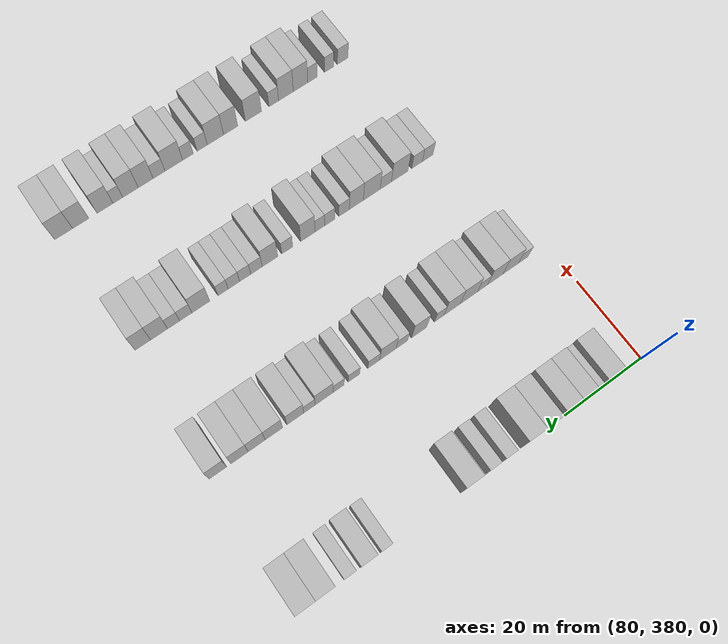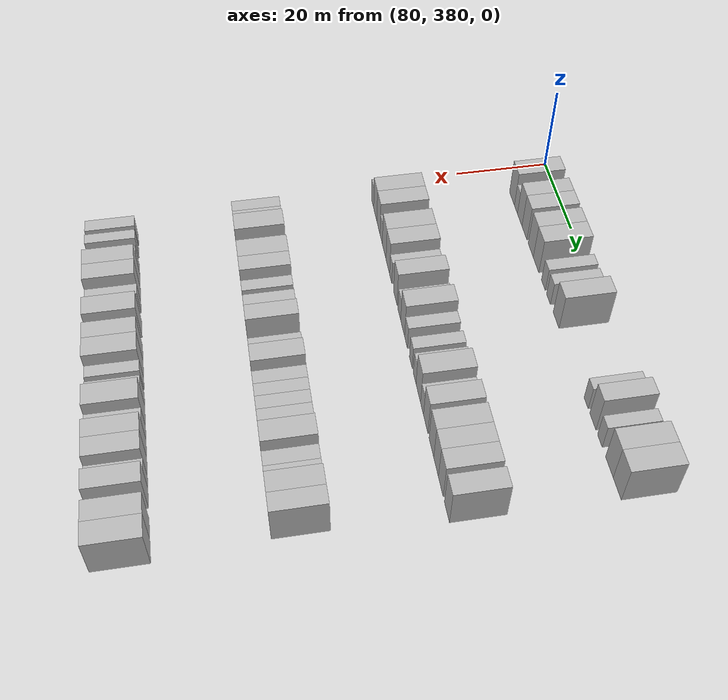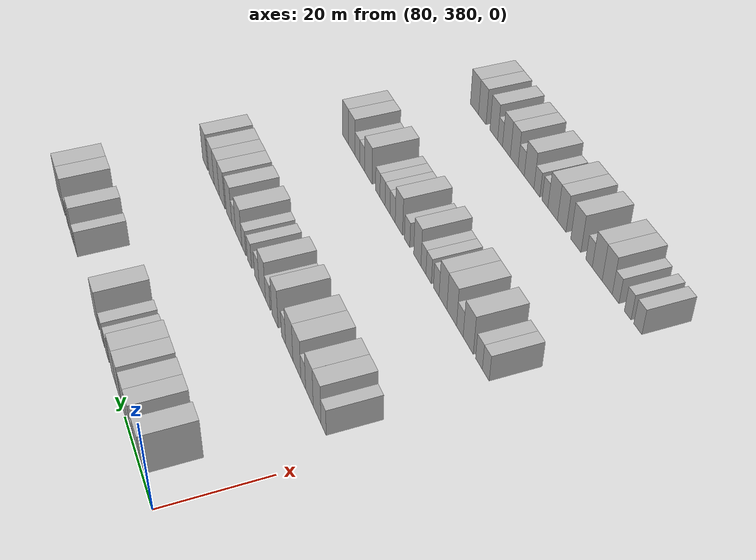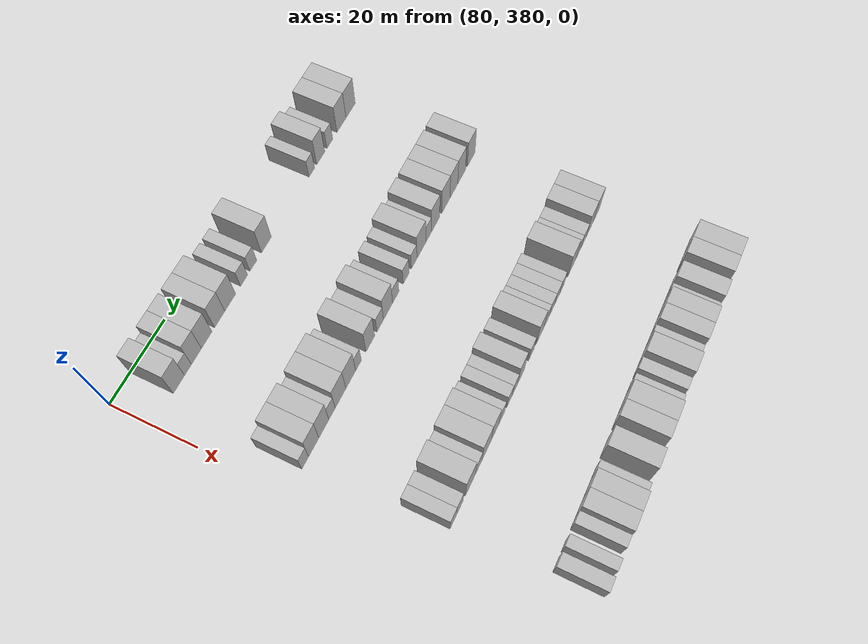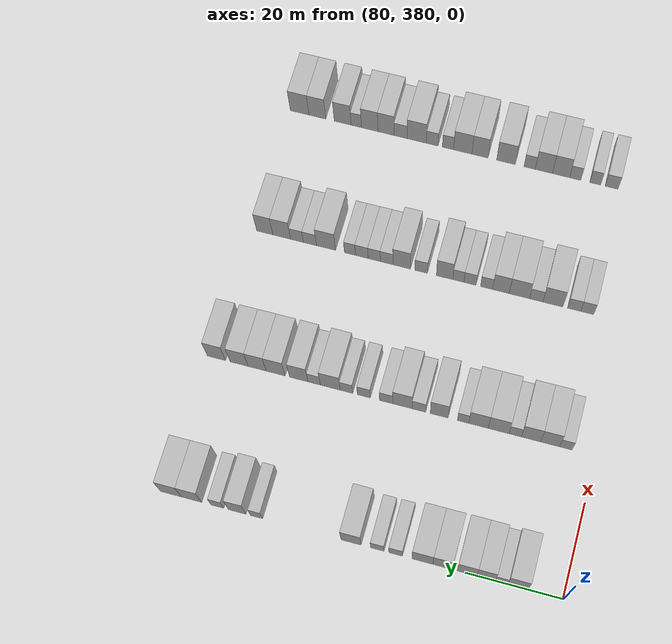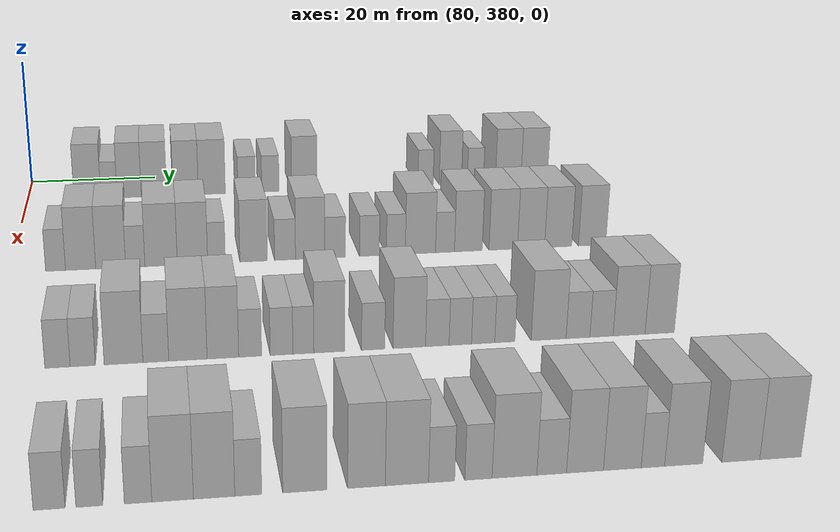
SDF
<sdf version="1.6">
 <world name="default">
  <model name="building_700">
   <static>1</static>
   <pose>85.0000 389.3509 0 0.000000 0.000000 0.000000</pose>
   <link name="link">
    <pose>0 0 4.50 0 0 0</pose>
    <collision name="collision"><geometry><box><size>10.0000 4.1630 9.0000</size></box></geometry></collision>
    <visual name="visual">
     <cast_shadows>0</cast_shadows>
     <geometry><box><size>10.0000 4.1630 9.0000</size></box></geometry>
     <material>
      <script>
       <uri>model://HANNAS_wall/materials/scripts</uri>
       <uri>model://HANNAS_wall/materials/textures</uri>
       <name>vrc/HANNAS_wall</name>
      </script>
     </material>
    </visual>
   </link>
  </model>
  <model name="building_701">
   <static>1</static>
   <pose>85.0000 392.7060 0 0.000000 0.000000 0.000000</pose>
   <link name="link">
    <pose>0 0 3.00 0 0 0</pose>
    <collision name="collision"><geometry><box><size>10.0000 2.5473 6.0000</size></box></geometry></collision>
    <visual name="visual">
     <cast_shadows>0</cast_shadows>
     <geometry><box><size>10.0000 2.5473 6.0000</size></box></geometry>
     <material>
      <script>
       <uri>model://HANNAS_wall/materials/scripts</uri>
       <uri>model://HANNAS_wall/materials/textures</uri>
       <name>vrc/HANNAS_wall</name>
      </script>
     </material>
    </visual>
   </link>
  </model>
  <model name="building_702">
   <static>1</static>
   <pose>85.0000 395.8703 0 0.000000 0.000000 0.000000</pose>
   <link name="link">
    <pose>0 0 4.50 0 0 0</pose>
    <collision name="collision"><geometry><box><size>10.0000 3.7812 9.0000</size></box></geometry></collision>
    <visual name="visual">
     <cast_shadows>0</cast_shadows>
     <geometry><box><size>10.0000 3.7812 9.0000</size></box></geometry>
     <material>
      <script>
       <uri>model://HANNAS_wall/materials/scripts</uri>
       <uri>model://HANNAS_wall/materials/textures</uri>
       <name>vrc/HANNAS_wall</name>
      </script>
     </material>
    </visual>
   </link>
  </model>
  <model name="building_703">
   <static>1</static>
   <pose>85.0000 399.7711 0 0.000000 0.000000 0.000000</pose>
   <link name="link">
    <pose>0 0 4.50 0 0 0</pose>
    <collision name="collision"><geometry><box><size>10.0000 4.0203 9.0000</size></box></geometry></collision>
    <visual name="visual">
     <cast_shadows>0</cast_shadows>
     <geometry><box><size>10.0000 4.0203 9.0000</size></box></geometry>
     <material>
      <script>
       <uri>model://HANNAS_wall/materials/scripts</uri>
       <uri>model://HANNAS_wall/materials/textures</uri>
       <name>vrc/HANNAS_wall</name>
      </script>
     </material>
    </visual>
   </link>
  </model>
  <model name="building_704">
   <static>1</static>
   <pose>85.0000 404.7817 0 0.000000 0.000000 0.000000</pose>
   <link name="link">
    <pose>0 0 4.50 0 0 0</pose>
    <collision name="collision"><geometry><box><size>10.0000 4.0009 9.0000</size></box></geometry></collision>
    <visual name="visual">
     <cast_shadows>0</cast_shadows>
     <geometry><box><size>10.0000 4.0009 9.0000</size></box></geometry>
     <material>
      <script>
       <uri>model://HANNAS_wall/materials/scripts</uri>
       <uri>model://HANNAS_wall/materials/textures</uri>
       <name>vrc/HANNAS_wall</name>
      </script>
     </material>
    </visual>
   </link>
  </model>
  <model name="building_705">
   <static>1</static>
   <pose>85.0000 408.9321 0 0.000000 0.000000 0.000000</pose>
   <link name="link">
    <pose>0 0 4.50 0 0 0</pose>
    <collision name="collision"><geometry><box><size>10.0000 4.2998 9.0000</size></box></geometry></collision>
    <visual name="visual">
     <cast_shadows>0</cast_shadows>
     <geometry><box><size>10.0000 4.2998 9.0000</size></box></geometry>
     <material>
      <script>
       <uri>model://HANNAS_wall/materials/scripts</uri>
       <uri>model://HANNAS_wall/materials/textures</uri>
       <name>vrc/HANNAS_wall</name>
      </script>
     </material>
    </visual>
   </link>
  </model>
  <model name="building_706">
   <static>1</static>
   <pose>85.0000 414.4917 0 0.000000 0.000000 0.000000</pose>
   <link name="link">
    <pose>0 0 3.00 0 0 0</pose>
    <collision name="collision"><geometry><box><size>10.0000 2.8193 6.0000</size></box></geometry></collision>
    <visual name="visual">
     <cast_shadows>0</cast_shadows>
     <geometry><box><size>10.0000 2.8193 6.0000</size></box></geometry>
     <material>
      <script>
       <uri>model://HANNAS_wall/materials/scripts</uri>
       <uri>model://HANNAS_wall/materials/textures</uri>
       <name>vrc/HANNAS_wall</name>
      </script>
     </material>
    </visual>
   </link>
  </model>
  <model name="building_707">
   <static>1</static>
   <pose>85.0000 418.2893 0 0.000000 0.000000 0.000000</pose>
   <link name="link">
    <pose>0 0 3.00 0 0 0</pose>
    <collision name="collision"><geometry><box><size>10.0000 2.7759 6.0000</size></box></geometry></collision>
    <visual name="visual">
     <cast_shadows>0</cast_shadows>
     <geometry><box><size>10.0000 2.7759 6.0000</size></box></geometry>
     <material>
      <script>
       <uri>model://HANNAS_wall/materials/scripts</uri>
       <uri>model://HANNAS_wall/materials/textures</uri>
       <name>vrc/HANNAS_wall</name>
      </script>
     </material>
    </visual>
   </link>
  </model>
  <model name="building_708">
   <static>1</static>
   <pose>85.0000 423.7507 0 0.000000 0.000000 0.000000</pose>
   <link name="link">
    <pose>0 0 4.50 0 0 0</pose>
    <collision name="collision"><geometry><box><size>10.0000 4.1468 9.0000</size></box></geometry></collision>
    <visual name="visual">
     <cast_shadows>0</cast_shadows>
     <geometry><box><size>10.0000 4.1468 9.0000</size></box></geometry>
     <material>
      <script>
       <uri>model://HANNAS_wall/materials/scripts</uri>
       <uri>model://HANNAS_wall/materials/textures</uri>
       <name>vrc/HANNAS_wall</name>
      </script>
     </material>
    </visual>
   </link>
  </model>
  <model name="building_709">
   <static>1</static>
   <pose>85.0000 443.6241 0 0.000000 0.000000 0.000000</pose>
   <link name="link">
    <pose>0 0 3.00 0 0 0</pose>
    <collision name="collision"><geometry><box><size>10.0000 2.5333 6.0000</size></box></geometry></collision>
    <visual name="visual">
     <cast_shadows>0</cast_shadows>
     <geometry><box><size>10.0000 2.5333 6.0000</size></box></geometry>
     <material>
      <script>
       <uri>model://HANNAS_wall/materials/scripts</uri>
       <uri>model://HANNAS_wall/materials/textures</uri>
       <name>vrc/HANNAS_wall</name>
      </script>
     </material>
    </visual>
   </link>
  </model>
  <model name="building_710">
   <static>1</static>
   <pose>85.0000 447.7383 0 0.000000 0.000000 0.000000</pose>
   <link name="link">
    <pose>0 0 4.50 0 0 0</pose>
    <collision name="collision"><geometry><box><size>10.0000 3.6951 9.0000</size></box></geometry></collision>
    <visual name="visual">
     <cast_shadows>0</cast_shadows>
     <geometry><box><size>10.0000 3.6951 9.0000</size></box></geometry>
     <material>
      <script>
       <uri>model://HANNAS_wall/materials/scripts</uri>
       <uri>model://HANNAS_wall/materials/textures</uri>
       <name>vrc/HANNAS_wall</name>
      </script>
     </material>
    </visual>
   </link>
  </model>
  <model name="building_711">
   <static>1</static>
   <pose>85.0000 451.9370 0 0.000000 0.000000 0.000000</pose>
   <link name="link">
    <pose>0 0 3.00 0 0 0</pose>
    <collision name="collision"><geometry><box><size>10.0000 2.7025 6.0000</size></box></geometry></collision>
    <visual name="visual">
     <cast_shadows>0</cast_shadows>
     <geometry><box><size>10.0000 2.7025 6.0000</size></box></geometry>
     <material>
      <script>
       <uri>model://HANNAS_wall/materials/scripts</uri>
       <uri>model://HANNAS_wall/materials/textures</uri>
       <name>vrc/HANNAS_wall</name>
      </script>
     </material>
    </visual>
   </link>
  </model>
  <model name="building_712">
   <static>1</static>
   <pose>85.0000 457.4324 0 0.000000 0.000000 0.000000</pose>
   <link name="link">
    <pose>0 0 4.50 0 0 0</pose>
    <collision name="collision"><geometry><box><size>10.0000 4.2882 9.0000</size></box></geometry></collision>
    <visual name="visual">
     <cast_shadows>0</cast_shadows>
     <geometry><box><size>10.0000 4.2882 9.0000</size></box></geometry>
     <material>
      <script>
       <uri>model://HANNAS_wall/materials/scripts</uri>
       <uri>model://HANNAS_wall/materials/textures</uri>
       <name>vrc/HANNAS_wall</name>
      </script>
     </material>
    </visual>
   </link>
  </model>
  <model name="building_713">
   <static>1</static>
   <pose>85.0000 461.8091 0 0.000000 0.000000 0.000000</pose>
   <link name="link">
    <pose>0 0 4.50 0 0 0</pose>
    <collision name="collision"><geometry><box><size>10.0000 4.4652 9.0000</size></box></geometry></collision>
    <visual name="visual">
     <cast_shadows>0</cast_shadows>
     <geometry><box><size>10.0000 4.4652 9.0000</size></box></geometry>
     <material>
      <script>
       <uri>model://HANNAS_wall/materials/scripts</uri>
       <uri>model://HANNAS_wall/materials/textures</uri>
       <name>vrc/HANNAS_wall</name>
      </script>
     </material>
    </visual>
   </link>
  </model>
  <model name="building_931">
   <static>1</static>
   <pose>115.0000 386.2589 0 0.000000 0.000000 0.000000</pose>
   <link name="link">
    <pose>0 0 3.00 0 0 0</pose>
    <collision name="collision"><geometry><box><size>10.0000 2.6485 6.0000</size></box></geometry></collision>
    <visual name="visual">
     <cast_shadows>0</cast_shadows>
     <geometry><box><size>10.0000 2.6485 6.0000</size></box></geometry>
     <material>
      <script>
       <uri>model://HANNAS_wall/materials/scripts</uri>
       <uri>model://HANNAS_wall/materials/textures</uri>
       <name>vrc/HANNAS_wall</name>
      </script>
     </material>
    </visual>
   </link>
  </model>
  <model name="building_932">
   <static>1</static>
   <pose>115.0000 389.6103 0 0.000000 0.000000 0.000000</pose>
   <link name="link">
    <pose>0 0 4.50 0 0 0</pose>
    <collision name="collision"><geometry><box><size>10.0000 4.0544 9.0000</size></box></geometry></collision>
    <visual name="visual">
     <cast_shadows>0</cast_shadows>
     <geometry><box><size>10.0000 4.0544 9.0000</size></box></geometry>
     <material>
      <script>
       <uri>model://HANNAS_wall/materials/scripts</uri>
       <uri>model://HANNAS_wall/materials/textures</uri>
       <name>vrc/HANNAS_wall</name>
      </script>
     </material>
    </visual>
   </link>
  </model>
  <model name="building_933">
   <static>1</static>
   <pose>115.0000 393.6614 0 0.000000 0.000000 0.000000</pose>
   <link name="link">
    <pose>0 0 4.50 0 0 0</pose>
    <collision name="collision"><geometry><box><size>10.0000 4.0476 9.0000</size></box></geometry></collision>
    <visual name="visual">
     <cast_shadows>0</cast_shadows>
     <geometry><box><size>10.0000 4.0476 9.0000</size></box></geometry>
     <material>
      <script>
       <uri>model://HANNAS_wall/materials/scripts</uri>
       <uri>model://HANNAS_wall/materials/textures</uri>
       <name>vrc/HANNAS_wall</name>
      </script>
     </material>
    </visual>
   </link>
  </model>
  <model name="building_934">
   <static>1</static>
   <pose>115.0000 396.9915 0 0.000000 0.000000 0.000000</pose>
   <link name="link">
    <pose>0 0 3.00 0 0 0</pose>
    <collision name="collision"><geometry><box><size>10.0000 2.6128 6.0000</size></box></geometry></collision>
    <visual name="visual">
     <cast_shadows>0</cast_shadows>
     <geometry><box><size>10.0000 2.6128 6.0000</size></box></geometry>
     <material>
      <script>
       <uri>model://HANNAS_wall/materials/scripts</uri>
       <uri>model://HANNAS_wall/materials/textures</uri>
       <name>vrc/HANNAS_wall</name>
      </script>
     </material>
    </visual>
   </link>
  </model>
  <model name="building_935">
   <static>1</static>
   <pose>115.0000 400.5063 0 0.000000 0.000000 0.000000</pose>
   <link name="link">
    <pose>0 0 4.50 0 0 0</pose>
    <collision name="collision"><geometry><box><size>10.0000 4.4168 9.0000</size></box></geometry></collision>
    <visual name="visual">
     <cast_shadows>0</cast_shadows>
     <geometry><box><size>10.0000 4.4168 9.0000</size></box></geometry>
     <material>
      <script>
       <uri>model://HANNAS_wall/materials/scripts</uri>
       <uri>model://HANNAS_wall/materials/textures</uri>
       <name>vrc/HANNAS_wall</name>
      </script>
     </material>
    </visual>
   </link>
  </model>
  <model name="building_936">
   <static>1</static>
   <pose>115.0000 404.7942 0 0.000000 0.000000 0.000000</pose>
   <link name="link">
    <pose>0 0 4.50 0 0 0</pose>
    <collision name="collision"><geometry><box><size>10.0000 4.1589 9.0000</size></box></geometry></collision>
    <visual name="visual">
     <cast_shadows>0</cast_shadows>
     <geometry><box><size>10.0000 4.1589 9.0000</size></box></geometry>
     <material>
      <script>
       <uri>model://HANNAS_wall/materials/scripts</uri>
       <uri>model://HANNAS_wall/materials/textures</uri>
       <name>vrc/HANNAS_wall</name>
      </script>
     </material>
    </visual>
   </link>
  </model>
  <model name="building_937">
   <static>1</static>
   <pose>115.0000 408.0900 0 0.000000 0.000000 0.000000</pose>
   <link name="link">
    <pose>0 0 3.00 0 0 0</pose>
    <collision name="collision"><geometry><box><size>10.0000 2.4327 6.0000</size></box></geometry></collision>
    <visual name="visual">
     <cast_shadows>0</cast_shadows>
     <geometry><box><size>10.0000 2.4327 6.0000</size></box></geometry>
     <material>
      <script>
       <uri>model://HANNAS_wall/materials/scripts</uri>
       <uri>model://HANNAS_wall/materials/textures</uri>
       <name>vrc/HANNAS_wall</name>
      </script>
     </material>
    </visual>
   </link>
  </model>
  <model name="building_938">
   <static>1</static>
   <pose>115.0000 413.2102 0 0.000000 0.000000 0.000000</pose>
   <link name="link">
    <pose>0 0 4.50 0 0 0</pose>
    <collision name="collision"><geometry><box><size>10.0000 3.8076 9.0000</size></box></geometry></collision>
    <visual name="visual">
     <cast_shadows>0</cast_shadows>
     <geometry><box><size>10.0000 3.8076 9.0000</size></box></geometry>
     <material>
      <script>
       <uri>model://HANNAS_wall/materials/scripts</uri>
       <uri>model://HANNAS_wall/materials/textures</uri>
       <name>vrc/HANNAS_wall</name>
      </script>
     </material>
    </visual>
   </link>
  </model>
  <model name="building_939">
   <static>1</static>
   <pose>115.0000 417.5746 0 0.000000 0.000000 0.000000</pose>
   <link name="link">
    <pose>0 0 3.00 0 0 0</pose>
    <collision name="collision"><geometry><box><size>10.0000 2.9213 6.0000</size></box></geometry></collision>
    <visual name="visual">
     <cast_shadows>0</cast_shadows>
     <geometry><box><size>10.0000 2.9213 6.0000</size></box></geometry>
     <material>
      <script>
       <uri>model://HANNAS_wall/materials/scripts</uri>
       <uri>model://HANNAS_wall/materials/textures</uri>
       <name>vrc/HANNAS_wall</name>
      </script>
     </material>
    </visual>
   </link>
  </model>
  <model name="building_940">
   <static>1</static>
   <pose>115.0000 421.0949 0 0.000000 0.000000 0.000000</pose>
   <link name="link">
    <pose>0 0 4.50 0 0 0</pose>
    <collision name="collision"><geometry><box><size>10.0000 4.1192 9.0000</size></box></geometry></collision>
    <visual name="visual">
     <cast_shadows>0</cast_shadows>
     <geometry><box><size>10.0000 4.1192 9.0000</size></box></geometry>
     <material>
      <script>
       <uri>model://HANNAS_wall/materials/scripts</uri>
       <uri>model://HANNAS_wall/materials/textures</uri>
       <name>vrc/HANNAS_wall</name>
      </script>
     </material>
    </visual>
   </link>
  </model>
  <model name="building_941">
   <static>1</static>
   <pose>115.0000 424.5959 0 0.000000 0.000000 0.000000</pose>
   <link name="link">
    <pose>0 0 3.00 0 0 0</pose>
    <collision name="collision"><geometry><box><size>10.0000 2.8827 6.0000</size></box></geometry></collision>
    <visual name="visual">
     <cast_shadows>0</cast_shadows>
     <geometry><box><size>10.0000 2.8827 6.0000</size></box></geometry>
     <material>
      <script>
       <uri>model://HANNAS_wall/materials/scripts</uri>
       <uri>model://HANNAS_wall/materials/textures</uri>
       <name>vrc/HANNAS_wall</name>
      </script>
     </material>
    </visual>
   </link>
  </model>
  <model name="building_942">
   <static>1</static>
   <pose>115.0000 429.4370 0 0.000000 0.000000 0.000000</pose>
   <link name="link">
    <pose>0 0 3.00 0 0 0</pose>
    <collision name="collision"><geometry><box><size>10.0000 2.7996 6.0000</size></box></geometry></collision>
    <visual name="visual">
     <cast_shadows>0</cast_shadows>
     <geometry><box><size>10.0000 2.7996 6.0000</size></box></geometry>
     <material>
      <script>
       <uri>model://HANNAS_wall/materials/scripts</uri>
       <uri>model://HANNAS_wall/materials/textures</uri>
       <name>vrc/HANNAS_wall</name>
      </script>
     </material>
    </visual>
   </link>
  </model>
  <model name="building_943">
   <static>1</static>
   <pose>115.0000 433.1832 0 0.000000 0.000000 0.000000</pose>
   <link name="link">
    <pose>0 0 3.00 0 0 0</pose>
    <collision name="collision"><geometry><box><size>10.0000 2.6928 6.0000</size></box></geometry></collision>
    <visual name="visual">
     <cast_shadows>0</cast_shadows>
     <geometry><box><size>10.0000 2.6928 6.0000</size></box></geometry>
     <material>
      <script>
       <uri>model://HANNAS_wall/materials/scripts</uri>
       <uri>model://HANNAS_wall/materials/textures</uri>
       <name>vrc/HANNAS_wall</name>
      </script>
     </material>
    </visual>
   </link>
  </model>
  <model name="building_944">
   <static>1</static>
   <pose>115.0000 436.6951 0 0.000000 0.000000 0.000000</pose>
   <link name="link">
    <pose>0 0 4.50 0 0 0</pose>
    <collision name="collision"><geometry><box><size>10.0000 4.3311 9.0000</size></box></geometry></collision>
    <visual name="visual">
     <cast_shadows>0</cast_shadows>
     <geometry><box><size>10.0000 4.3311 9.0000</size></box></geometry>
     <material>
      <script>
       <uri>model://HANNAS_wall/materials/scripts</uri>
       <uri>model://HANNAS_wall/materials/textures</uri>
       <name>vrc/HANNAS_wall</name>
      </script>
     </material>
    </visual>
   </link>
  </model>
  <model name="building_945">
   <static>1</static>
   <pose>115.0000 440.2238 0 0.000000 0.000000 0.000000</pose>
   <link name="link">
    <pose>0 0 3.00 0 0 0</pose>
    <collision name="collision"><geometry><box><size>10.0000 2.7263 6.0000</size></box></geometry></collision>
    <visual name="visual">
     <cast_shadows>0</cast_shadows>
     <geometry><box><size>10.0000 2.7263 6.0000</size></box></geometry>
     <material>
      <script>
       <uri>model://HANNAS_wall/materials/scripts</uri>
       <uri>model://HANNAS_wall/materials/textures</uri>
       <name>vrc/HANNAS_wall</name>
      </script>
     </material>
    </visual>
   </link>
  </model>
  <model name="building_946">
   <static>1</static>
   <pose>115.0000 443.5820 0 0.000000 0.000000 0.000000</pose>
   <link name="link">
    <pose>0 0 4.50 0 0 0</pose>
    <collision name="collision"><geometry><box><size>10.0000 3.9902 9.0000</size></box></geometry></collision>
    <visual name="visual">
     <cast_shadows>0</cast_shadows>
     <geometry><box><size>10.0000 3.9902 9.0000</size></box></geometry>
     <material>
      <script>
       <uri>model://HANNAS_wall/materials/scripts</uri>
       <uri>model://HANNAS_wall/materials/textures</uri>
       <name>vrc/HANNAS_wall</name>
      </script>
     </material>
    </visual>
   </link>
  </model>
  <model name="building_947">
   <static>1</static>
   <pose>115.0000 448.6470 0 0.000000 0.000000 0.000000</pose>
   <link name="link">
    <pose>0 0 4.50 0 0 0</pose>
    <collision name="collision"><geometry><box><size>10.0000 4.1398 9.0000</size></box></geometry></collision>
    <visual name="visual">
     <cast_shadows>0</cast_shadows>
     <geometry><box><size>10.0000 4.1398 9.0000</size></box></geometry>
     <material>
      <script>
       <uri>model://HANNAS_wall/materials/scripts</uri>
       <uri>model://HANNAS_wall/materials/textures</uri>
       <name>vrc/HANNAS_wall</name>
      </script>
     </material>
    </visual>
   </link>
  </model>
  <model name="building_948">
   <static>1</static>
   <pose>115.0000 452.6961 0 0.000000 0.000000 0.000000</pose>
   <link name="link">
    <pose>0 0 4.50 0 0 0</pose>
    <collision name="collision"><geometry><box><size>10.0000 3.9584 9.0000</size></box></geometry></collision>
    <visual name="visual">
     <cast_shadows>0</cast_shadows>
     <geometry><box><size>10.0000 3.9584 9.0000</size></box></geometry>
     <material>
      <script>
       <uri>model://HANNAS_wall/materials/scripts</uri>
       <uri>model://HANNAS_wall/materials/textures</uri>
       <name>vrc/HANNAS_wall</name>
      </script>
     </material>
    </visual>
   </link>
  </model>
  <model name="building_949">
   <static>1</static>
   <pose>115.0000 456.6664 0 0.000000 0.000000 0.000000</pose>
   <link name="link">
    <pose>0 0 4.50 0 0 0</pose>
    <collision name="collision"><geometry><box><size>10.0000 3.9823 9.0000</size></box></geometry></collision>
    <visual name="visual">
     <cast_shadows>0</cast_shadows>
     <geometry><box><size>10.0000 3.9823 9.0000</size></box></geometry>
     <material>
      <script>
       <uri>model://HANNAS_wall/materials/scripts</uri>
       <uri>model://HANNAS_wall/materials/textures</uri>
       <name>vrc/HANNAS_wall</name>
      </script>
     </material>
    </visual>
   </link>
  </model>
  <model name="building_950">
   <static>1</static>
   <pose>115.0000 461.6704 0 0.000000 0.000000 0.000000</pose>
   <link name="link">
    <pose>0 0 4.50 0 0 0</pose>
    <collision name="collision"><geometry><box><size>10.0000 4.0256 9.0000</size></box></geometry></collision>
    <visual name="visual">
     <cast_shadows>0</cast_shadows>
     <geometry><box><size>10.0000 4.0256 9.0000</size></box></geometry>
     <material>
      <script>
       <uri>model://HANNAS_wall/materials/scripts</uri>
       <uri>model://HANNAS_wall/materials/textures</uri>
       <name>vrc/HANNAS_wall</name>
      </script>
     </material>
    </visual>
   </link>
  </model>
  <model name="building_1168">
   <static>1</static>
   <pose>145.0000 388.3261 0 0.000000 0.000000 0.000000</pose>
   <link name="link">
    <pose>0 0 3.00 0 0 0</pose>
    <collision name="collision"><geometry><box><size>10.0000 2.8599 6.0000</size></box></geometry></collision>
    <visual name="visual">
     <cast_shadows>0</cast_shadows>
     <geometry><box><size>10.0000 2.8599 6.0000</size></box></geometry>
     <material>
      <script>
       <uri>model://HANNAS_wall/materials/scripts</uri>
       <uri>model://HANNAS_wall/materials/textures</uri>
       <name>vrc/HANNAS_wall</name>
      </script>
     </material>
    </visual>
   </link>
  </model>
  <model name="building_1169">
   <static>1</static>
   <pose>145.0000 391.1811 0 0.000000 0.000000 0.000000</pose>
   <link name="link">
    <pose>0 0 3.00 0 0 0</pose>
    <collision name="collision"><geometry><box><size>10.0000 2.8502 6.0000</size></box></geometry></collision>
    <visual name="visual">
     <cast_shadows>0</cast_shadows>
     <geometry><box><size>10.0000 2.8502 6.0000</size></box></geometry>
     <material>
      <script>
       <uri>model://HANNAS_wall/materials/scripts</uri>
       <uri>model://HANNAS_wall/materials/textures</uri>
       <name>vrc/HANNAS_wall</name>
      </script>
     </material>
    </visual>
   </link>
  </model>
  <model name="building_1170">
   <static>1</static>
   <pose>145.0000 395.8168 0 0.000000 0.000000 0.000000</pose>
   <link name="link">
    <pose>0 0 4.50 0 0 0</pose>
    <collision name="collision"><geometry><box><size>10.0000 4.4210 9.0000</size></box></geometry></collision>
    <visual name="visual">
     <cast_shadows>0</cast_shadows>
     <geometry><box><size>10.0000 4.4210 9.0000</size></box></geometry>
     <material>
      <script>
       <uri>model://HANNAS_wall/materials/scripts</uri>
       <uri>model://HANNAS_wall/materials/textures</uri>
       <name>vrc/HANNAS_wall</name>
      </script>
     </material>
    </visual>
   </link>
  </model>
  <model name="building_1171">
   <static>1</static>
   <pose>145.0000 399.5074 0 0.000000 0.000000 0.000000</pose>
   <link name="link">
    <pose>0 0 3.00 0 0 0</pose>
    <collision name="collision"><geometry><box><size>10.0000 2.9603 6.0000</size></box></geometry></collision>
    <visual name="visual">
     <cast_shadows>0</cast_shadows>
     <geometry><box><size>10.0000 2.9603 6.0000</size></box></geometry>
     <material>
      <script>
       <uri>model://HANNAS_wall/materials/scripts</uri>
       <uri>model://HANNAS_wall/materials/textures</uri>
       <name>vrc/HANNAS_wall</name>
      </script>
     </material>
    </visual>
   </link>
  </model>
  <model name="building_1172">
   <static>1</static>
   <pose>145.0000 403.1982 0 0.000000 0.000000 0.000000</pose>
   <link name="link">
    <pose>0 0 4.50 0 0 0</pose>
    <collision name="collision"><geometry><box><size>10.0000 4.4214 9.0000</size></box></geometry></collision>
    <visual name="visual">
     <cast_shadows>0</cast_shadows>
     <geometry><box><size>10.0000 4.4214 9.0000</size></box></geometry>
     <material>
      <script>
       <uri>model://HANNAS_wall/materials/scripts</uri>
       <uri>model://HANNAS_wall/materials/textures</uri>
       <name>vrc/HANNAS_wall</name>
      </script>
     </material>
    </visual>
   </link>
  </model>
  <model name="building_1173">
   <static>1</static>
   <pose>145.0000 407.2382 0 0.000000 0.000000 0.000000</pose>
   <link name="link">
    <pose>0 0 4.50 0 0 0</pose>
    <collision name="collision"><geometry><box><size>10.0000 3.6586 9.0000</size></box></geometry></collision>
    <visual name="visual">
     <cast_shadows>0</cast_shadows>
     <geometry><box><size>10.0000 3.6586 9.0000</size></box></geometry>
     <material>
      <script>
       <uri>model://HANNAS_wall/materials/scripts</uri>
       <uri>model://HANNAS_wall/materials/textures</uri>
       <name>vrc/HANNAS_wall</name>
      </script>
     </material>
    </visual>
   </link>
  </model>
  <model name="building_1174">
   <static>1</static>
   <pose>145.0000 410.4114 0 0.000000 0.000000 0.000000</pose>
   <link name="link">
    <pose>0 0 3.00 0 0 0</pose>
    <collision name="collision"><geometry><box><size>10.0000 2.6876 6.0000</size></box></geometry></collision>
    <visual name="visual">
     <cast_shadows>0</cast_shadows>
     <geometry><box><size>10.0000 2.6876 6.0000</size></box></geometry>
     <material>
      <script>
       <uri>model://HANNAS_wall/materials/scripts</uri>
       <uri>model://HANNAS_wall/materials/textures</uri>
       <name>vrc/HANNAS_wall</name>
      </script>
     </material>
    </visual>
   </link>
  </model>
  <model name="building_1175">
   <static>1</static>
   <pose>145.0000 414.0863 0 0.000000 0.000000 0.000000</pose>
   <link name="link">
    <pose>0 0 3.00 0 0 0</pose>
    <collision name="collision"><geometry><box><size>10.0000 2.6622 6.0000</size></box></geometry></collision>
    <visual name="visual">
     <cast_shadows>0</cast_shadows>
     <geometry><box><size>10.0000 2.6622 6.0000</size></box></geometry>
     <material>
      <script>
       <uri>model://HANNAS_wall/materials/scripts</uri>
       <uri>model://HANNAS_wall/materials/textures</uri>
       <name>vrc/HANNAS_wall</name>
      </script>
     </material>
    </visual>
   </link>
  </model>
  <model name="building_1176">
   <static>1</static>
   <pose>145.0000 416.6533 0 0.000000 0.000000 0.000000</pose>
   <link name="link">
    <pose>0 0 3.00 0 0 0</pose>
    <collision name="collision"><geometry><box><size>10.0000 2.4719 6.0000</size></box></geometry></collision>
    <visual name="visual">
     <cast_shadows>0</cast_shadows>
     <geometry><box><size>10.0000 2.4719 6.0000</size></box></geometry>
     <material>
      <script>
       <uri>model://HANNAS_wall/materials/scripts</uri>
       <uri>model://HANNAS_wall/materials/textures</uri>
       <name>vrc/HANNAS_wall</name>
      </script>
     </material>
    </visual>
   </link>
  </model>
  <model name="building_1177">
   <static>1</static>
   <pose>145.0000 419.7147 0 0.000000 0.000000 0.000000</pose>
   <link name="link">
    <pose>0 0 4.50 0 0 0</pose>
    <collision name="collision"><geometry><box><size>10.0000 3.6509 9.0000</size></box></geometry></collision>
    <visual name="visual">
     <cast_shadows>0</cast_shadows>
     <geometry><box><size>10.0000 3.6509 9.0000</size></box></geometry>
     <material>
      <script>
       <uri>model://HANNAS_wall/materials/scripts</uri>
       <uri>model://HANNAS_wall/materials/textures</uri>
       <name>vrc/HANNAS_wall</name>
      </script>
     </material>
    </visual>
   </link>
  </model>
  <model name="building_1178">
   <static>1</static>
   <pose>145.0000 424.9277 0 0.000000 0.000000 0.000000</pose>
   <link name="link">
    <pose>0 0 3.00 0 0 0</pose>
    <collision name="collision"><geometry><box><size>10.0000 2.7751 6.0000</size></box></geometry></collision>
    <visual name="visual">
     <cast_shadows>0</cast_shadows>
     <geometry><box><size>10.0000 2.7751 6.0000</size></box></geometry>
     <material>
      <script>
       <uri>model://HANNAS_wall/materials/scripts</uri>
       <uri>model://HANNAS_wall/materials/textures</uri>
       <name>vrc/HANNAS_wall</name>
      </script>
     </material>
    </visual>
   </link>
  </model>
  <model name="building_1179">
   <static>1</static>
   <pose>145.0000 429.2715 0 0.000000 0.000000 0.000000</pose>
   <link name="link">
    <pose>0 0 4.50 0 0 0</pose>
    <collision name="collision"><geometry><box><size>10.0000 3.9126 9.0000</size></box></geometry></collision>
    <visual name="visual">
     <cast_shadows>0</cast_shadows>
     <geometry><box><size>10.0000 3.9126 9.0000</size></box></geometry>
     <material>
      <script>
       <uri>model://HANNAS_wall/materials/scripts</uri>
       <uri>model://HANNAS_wall/materials/textures</uri>
       <name>vrc/HANNAS_wall</name>
      </script>
     </material>
    </visual>
   </link>
  </model>
  <model name="building_1180">
   <static>1</static>
   <pose>145.0000 432.6476 0 0.000000 0.000000 0.000000</pose>
   <link name="link">
    <pose>0 0 3.00 0 0 0</pose>
    <collision name="collision"><geometry><box><size>10.0000 2.8395 6.0000</size></box></geometry></collision>
    <visual name="visual">
     <cast_shadows>0</cast_shadows>
     <geometry><box><size>10.0000 2.8395 6.0000</size></box></geometry>
     <material>
      <script>
       <uri>model://HANNAS_wall/materials/scripts</uri>
       <uri>model://HANNAS_wall/materials/textures</uri>
       <name>vrc/HANNAS_wall</name>
      </script>
     </material>
    </visual>
   </link>
  </model>
  <model name="building_1181">
   <static>1</static>
   <pose>145.0000 435.4334 0 0.000000 0.000000 0.000000</pose>
   <link name="link">
    <pose>0 0 3.00 0 0 0</pose>
    <collision name="collision"><geometry><box><size>10.0000 2.7323 6.0000</size></box></geometry></collision>
    <visual name="visual">
     <cast_shadows>0</cast_shadows>
     <geometry><box><size>10.0000 2.7323 6.0000</size></box></geometry>
     <material>
      <script>
       <uri>model://HANNAS_wall/materials/scripts</uri>
       <uri>model://HANNAS_wall/materials/textures</uri>
       <name>vrc/HANNAS_wall</name>
      </script>
     </material>
    </visual>
   </link>
  </model>
  <model name="building_1182">
   <static>1</static>
   <pose>145.0000 438.2175 0 0.000000 0.000000 0.000000</pose>
   <link name="link">
    <pose>0 0 3.00 0 0 0</pose>
    <collision name="collision"><geometry><box><size>10.0000 2.8358 6.0000</size></box></geometry></collision>
    <visual name="visual">
     <cast_shadows>0</cast_shadows>
     <geometry><box><size>10.0000 2.8358 6.0000</size></box></geometry>
     <material>
      <script>
       <uri>model://HANNAS_wall/materials/scripts</uri>
       <uri>model://HANNAS_wall/materials/textures</uri>
       <name>vrc/HANNAS_wall</name>
      </script>
     </material>
    </visual>
   </link>
  </model>
  <model name="building_1183">
   <static>1</static>
   <pose>145.0000 440.8736 0 0.000000 0.000000 0.000000</pose>
   <link name="link">
    <pose>0 0 3.00 0 0 0</pose>
    <collision name="collision"><geometry><box><size>10.0000 2.4764 6.0000</size></box></geometry></collision>
    <visual name="visual">
     <cast_shadows>0</cast_shadows>
     <geometry><box><size>10.0000 2.4764 6.0000</size></box></geometry>
     <material>
      <script>
       <uri>model://HANNAS_wall/materials/scripts</uri>
       <uri>model://HANNAS_wall/materials/textures</uri>
       <name>vrc/HANNAS_wall</name>
      </script>
     </material>
    </visual>
   </link>
  </model>
  <model name="building_1184">
   <static>1</static>
   <pose>145.0000 446.2680 0 0.000000 0.000000 0.000000</pose>
   <link name="link">
    <pose>0 0 4.50 0 0 0</pose>
    <collision name="collision"><geometry><box><size>10.0000 4.3125 9.0000</size></box></geometry></collision>
    <visual name="visual">
     <cast_shadows>0</cast_shadows>
     <geometry><box><size>10.0000 4.3125 9.0000</size></box></geometry>
     <material>
      <script>
       <uri>model://HANNAS_wall/materials/scripts</uri>
       <uri>model://HANNAS_wall/materials/textures</uri>
       <name>vrc/HANNAS_wall</name>
      </script>
     </material>
    </visual>
   </link>
  </model>
  <model name="building_1185">
   <static>1</static>
   <pose>145.0000 449.9049 0 0.000000 0.000000 0.000000</pose>
   <link name="link">
    <pose>0 0 3.00 0 0 0</pose>
    <collision name="collision"><geometry><box><size>10.0000 2.9613 6.0000</size></box></geometry></collision>
    <visual name="visual">
     <cast_shadows>0</cast_shadows>
     <geometry><box><size>10.0000 2.9613 6.0000</size></box></geometry>
     <material>
      <script>
       <uri>model://HANNAS_wall/materials/scripts</uri>
       <uri>model://HANNAS_wall/materials/textures</uri>
       <name>vrc/HANNAS_wall</name>
      </script>
     </material>
    </visual>
   </link>
  </model>
  <model name="building_1186">
   <static>1</static>
   <pose>145.0000 452.8333 0 0.000000 0.000000 0.000000</pose>
   <link name="link">
    <pose>0 0 3.00 0 0 0</pose>
    <collision name="collision"><geometry><box><size>10.0000 2.8955 6.0000</size></box></geometry></collision>
    <visual name="visual">
     <cast_shadows>0</cast_shadows>
     <geometry><box><size>10.0000 2.8955 6.0000</size></box></geometry>
     <material>
      <script>
       <uri>model://HANNAS_wall/materials/scripts</uri>
       <uri>model://HANNAS_wall/materials/textures</uri>
       <name>vrc/HANNAS_wall</name>
      </script>
     </material>
    </visual>
   </link>
  </model>
  <model name="building_1187">
   <static>1</static>
   <pose>145.0000 456.2868 0 0.000000 0.000000 0.000000</pose>
   <link name="link">
    <pose>0 0 4.50 0 0 0</pose>
    <collision name="collision"><geometry><box><size>10.0000 4.0115 9.0000</size></box></geometry></collision>
    <visual name="visual">
     <cast_shadows>0</cast_shadows>
     <geometry><box><size>10.0000 4.0115 9.0000</size></box></geometry>
     <material>
      <script>
       <uri>model://HANNAS_wall/materials/scripts</uri>
       <uri>model://HANNAS_wall/materials/textures</uri>
       <name>vrc/HANNAS_wall</name>
      </script>
     </material>
    </visual>
   </link>
  </model>
  <model name="building_1188">
   <static>1</static>
   <pose>145.0000 460.1366 0 0.000000 0.000000 0.000000</pose>
   <link name="link">
    <pose>0 0 4.50 0 0 0</pose>
    <collision name="collision"><geometry><box><size>10.0000 3.6881 9.0000</size></box></geometry></collision>
    <visual name="visual">
     <cast_shadows>0</cast_shadows>
     <geometry><box><size>10.0000 3.6881 9.0000</size></box></geometry>
     <material>
      <script>
       <uri>model://HANNAS_wall/materials/scripts</uri>
       <uri>model://HANNAS_wall/materials/textures</uri>
       <name>vrc/HANNAS_wall</name>
      </script>
     </material>
    </visual>
   </link>
  </model>
  <model name="building_1396">
   <static>1</static>
   <pose>175.0000 389.3629 0 0.000000 0.000000 0.000000</pose>
   <link name="link">
    <pose>0 0 3.00 0 0 0</pose>
    <collision name="collision"><geometry><box><size>10.0000 2.9241 6.0000</size></box></geometry></collision>
    <visual name="visual">
     <cast_shadows>0</cast_shadows>
     <geometry><box><size>10.0000 2.9241 6.0000</size></box></geometry>
     <material>
      <script>
       <uri>model://HANNAS_wall/materials/scripts</uri>
       <uri>model://HANNAS_wall/materials/textures</uri>
       <name>vrc/HANNAS_wall</name>
      </script>
     </material>
    </visual>
   </link>
  </model>
  <model name="building_1397">
   <static>1</static>
   <pose>175.0000 393.0617 0 0.000000 0.000000 0.000000</pose>
   <link name="link">
    <pose>0 0 3.00 0 0 0</pose>
    <collision name="collision"><geometry><box><size>10.0000 2.4736 6.0000</size></box></geometry></collision>
    <visual name="visual">
     <cast_shadows>0</cast_shadows>
     <geometry><box><size>10.0000 2.4736 6.0000</size></box></geometry>
     <material>
      <script>
       <uri>model://HANNAS_wall/materials/scripts</uri>
       <uri>model://HANNAS_wall/materials/textures</uri>
       <name>vrc/HANNAS_wall</name>
      </script>
     </material>
    </visual>
   </link>
  </model>
  <model name="building_1398">
   <static>1</static>
   <pose>175.0000 397.5756 0 0.000000 0.000000 0.000000</pose>
   <link name="link">
    <pose>0 0 3.00 0 0 0</pose>
    <collision name="collision"><geometry><box><size>10.0000 2.5542 6.0000</size></box></geometry></collision>
    <visual name="visual">
     <cast_shadows>0</cast_shadows>
     <geometry><box><size>10.0000 2.5542 6.0000</size></box></geometry>
     <material>
      <script>
       <uri>model://HANNAS_wall/materials/scripts</uri>
       <uri>model://HANNAS_wall/materials/textures</uri>
       <name>vrc/HANNAS_wall</name>
      </script>
     </material>
    </visual>
   </link>
  </model>
  <model name="building_1399">
   <static>1</static>
   <pose>175.0000 400.7965 0 0.000000 0.000000 0.000000</pose>
   <link name="link">
    <pose>0 0 4.50 0 0 0</pose>
    <collision name="collision"><geometry><box><size>10.0000 3.8874 9.0000</size></box></geometry></collision>
    <visual name="visual">
     <cast_shadows>0</cast_shadows>
     <geometry><box><size>10.0000 3.8874 9.0000</size></box></geometry>
     <material>
      <script>
       <uri>model://HANNAS_wall/materials/scripts</uri>
       <uri>model://HANNAS_wall/materials/textures</uri>
       <name>vrc/HANNAS_wall</name>
      </script>
     </material>
    </visual>
   </link>
  </model>
  <model name="building_1400">
   <static>1</static>
   <pose>175.0000 404.6953 0 0.000000 0.000000 0.000000</pose>
   <link name="link">
    <pose>0 0 4.50 0 0 0</pose>
    <collision name="collision"><geometry><box><size>10.0000 3.9102 9.0000</size></box></geometry></collision>
    <visual name="visual">
     <cast_shadows>0</cast_shadows>
     <geometry><box><size>10.0000 3.9102 9.0000</size></box></geometry>
     <material>
      <script>
       <uri>model://HANNAS_wall/materials/scripts</uri>
       <uri>model://HANNAS_wall/materials/textures</uri>
       <name>vrc/HANNAS_wall</name>
      </script>
     </material>
    </visual>
   </link>
  </model>
  <model name="building_1401">
   <static>1</static>
   <pose>175.0000 407.9253 0 0.000000 0.000000 0.000000</pose>
   <link name="link">
    <pose>0 0 3.00 0 0 0</pose>
    <collision name="collision"><geometry><box><size>10.0000 2.5497 6.0000</size></box></geometry></collision>
    <visual name="visual">
     <cast_shadows>0</cast_shadows>
     <geometry><box><size>10.0000 2.5497 6.0000</size></box></geometry>
     <material>
      <script>
       <uri>model://HANNAS_wall/materials/scripts</uri>
       <uri>model://HANNAS_wall/materials/textures</uri>
       <name>vrc/HANNAS_wall</name>
      </script>
     </material>
    </visual>
   </link>
  </model>
  <model name="building_1402">
   <static>1</static>
   <pose>175.0000 413.3174 0 0.000000 0.000000 0.000000</pose>
   <link name="link">
    <pose>0 0 4.50 0 0 0</pose>
    <collision name="collision"><geometry><box><size>10.0000 4.2345 9.0000</size></box></geometry></collision>
    <visual name="visual">
     <cast_shadows>0</cast_shadows>
     <geometry><box><size>10.0000 4.2345 9.0000</size></box></geometry>
     <material>
      <script>
       <uri>model://HANNAS_wall/materials/scripts</uri>
       <uri>model://HANNAS_wall/materials/textures</uri>
       <name>vrc/HANNAS_wall</name>
      </script>
     </material>
    </visual>
   </link>
  </model>
  <model name="building_1403">
   <static>1</static>
   <pose>175.0000 419.2633 0 0.000000 0.000000 0.000000</pose>
   <link name="link">
    <pose>0 0 4.50 0 0 0</pose>
    <collision name="collision"><geometry><box><size>10.0000 3.6574 9.0000</size></box></geometry></collision>
    <visual name="visual">
     <cast_shadows>0</cast_shadows>
     <geometry><box><size>10.0000 3.6574 9.0000</size></box></geometry>
     <material>
      <script>
       <uri>model://HANNAS_wall/materials/scripts</uri>
       <uri>model://HANNAS_wall/materials/textures</uri>
       <name>vrc/HANNAS_wall</name>
      </script>
     </material>
    </visual>
   </link>
  </model>
  <model name="building_1404">
   <static>1</static>
   <pose>175.0000 423.2064 0 0.000000 0.000000 0.000000</pose>
   <link name="link">
    <pose>0 0 4.50 0 0 0</pose>
    <collision name="collision"><geometry><box><size>10.0000 4.2288 9.0000</size></box></geometry></collision>
    <visual name="visual">
     <cast_shadows>0</cast_shadows>
     <geometry><box><size>10.0000 4.2288 9.0000</size></box></geometry>
     <material>
      <script>
       <uri>model://HANNAS_wall/materials/scripts</uri>
       <uri>model://HANNAS_wall/materials/textures</uri>
       <name>vrc/HANNAS_wall</name>
      </script>
     </material>
    </visual>
   </link>
  </model>
  <model name="building_1405">
   <static>1</static>
   <pose>175.0000 426.6115 0 0.000000 0.000000 0.000000</pose>
   <link name="link">
    <pose>0 0 3.00 0 0 0</pose>
    <collision name="collision"><geometry><box><size>10.0000 2.5813 6.0000</size></box></geometry></collision>
    <visual name="visual">
     <cast_shadows>0</cast_shadows>
     <geometry><box><size>10.0000 2.5813 6.0000</size></box></geometry>
     <material>
      <script>
       <uri>model://HANNAS_wall/materials/scripts</uri>
       <uri>model://HANNAS_wall/materials/textures</uri>
       <name>vrc/HANNAS_wall</name>
      </script>
     </material>
    </visual>
   </link>
  </model>
  <model name="building_1406">
   <static>1</static>
   <pose>175.0000 430.2518 0 0.000000 0.000000 0.000000</pose>
   <link name="link">
    <pose>0 0 3.00 0 0 0</pose>
    <collision name="collision"><geometry><box><size>10.0000 2.6992 6.0000</size></box></geometry></collision>
    <visual name="visual">
     <cast_shadows>0</cast_shadows>
     <geometry><box><size>10.0000 2.6992 6.0000</size></box></geometry>
     <material>
      <script>
       <uri>model://HANNAS_wall/materials/scripts</uri>
       <uri>model://HANNAS_wall/materials/textures</uri>
       <name>vrc/HANNAS_wall</name>
      </script>
     </material>
    </visual>
   </link>
  </model>
  <model name="building_1407">
   <static>1</static>
   <pose>175.0000 433.8397 0 0.000000 0.000000 0.000000</pose>
   <link name="link">
    <pose>0 0 4.50 0 0 0</pose>
    <collision name="collision"><geometry><box><size>10.0000 4.4765 9.0000</size></box></geometry></collision>
    <visual name="visual">
     <cast_shadows>0</cast_shadows>
     <geometry><box><size>10.0000 4.4765 9.0000</size></box></geometry>
     <material>
      <script>
       <uri>model://HANNAS_wall/materials/scripts</uri>
       <uri>model://HANNAS_wall/materials/textures</uri>
       <name>vrc/HANNAS_wall</name>
      </script>
     </material>
    </visual>
   </link>
  </model>
  <model name="building_1408">
   <static>1</static>
   <pose>175.0000 437.5704 0 0.000000 0.000000 0.000000</pose>
   <link name="link">
    <pose>0 0 3.00 0 0 0</pose>
    <collision name="collision"><geometry><box><size>10.0000 2.9849 6.0000</size></box></geometry></collision>
    <visual name="visual">
     <cast_shadows>0</cast_shadows>
     <geometry><box><size>10.0000 2.9849 6.0000</size></box></geometry>
     <material>
      <script>
       <uri>model://HANNAS_wall/materials/scripts</uri>
       <uri>model://HANNAS_wall/materials/textures</uri>
       <name>vrc/HANNAS_wall</name>
      </script>
     </material>
    </visual>
   </link>
  </model>
  <model name="building_1409">
   <static>1</static>
   <pose>175.0000 440.9302 0 0.000000 0.000000 0.000000</pose>
   <link name="link">
    <pose>0 0 4.50 0 0 0</pose>
    <collision name="collision"><geometry><box><size>10.0000 3.7347 9.0000</size></box></geometry></collision>
    <visual name="visual">
     <cast_shadows>0</cast_shadows>
     <geometry><box><size>10.0000 3.7347 9.0000</size></box></geometry>
     <material>
      <script>
       <uri>model://HANNAS_wall/materials/scripts</uri>
       <uri>model://HANNAS_wall/materials/textures</uri>
       <name>vrc/HANNAS_wall</name>
      </script>
     </material>
    </visual>
   </link>
  </model>
  <model name="building_1410">
   <static>1</static>
   <pose>175.0000 444.7184 0 0.000000 0.000000 0.000000</pose>
   <link name="link">
    <pose>0 0 4.50 0 0 0</pose>
    <collision name="collision"><geometry><box><size>10.0000 3.8418 9.0000</size></box></geometry></collision>
    <visual name="visual">
     <cast_shadows>0</cast_shadows>
     <geometry><box><size>10.0000 3.8418 9.0000</size></box></geometry>
     <material>
      <script>
       <uri>model://HANNAS_wall/materials/scripts</uri>
       <uri>model://HANNAS_wall/materials/textures</uri>
       <name>vrc/HANNAS_wall</name>
      </script>
     </material>
    </visual>
   </link>
  </model>
  <model name="building_1411">
   <static>1</static>
   <pose>175.0000 447.8434 0 0.000000 0.000000 0.000000</pose>
   <link name="link">
    <pose>0 0 3.00 0 0 0</pose>
    <collision name="collision"><geometry><box><size>10.0000 2.4081 6.0000</size></box></geometry></collision>
    <visual name="visual">
     <cast_shadows>0</cast_shadows>
     <geometry><box><size>10.0000 2.4081 6.0000</size></box></geometry>
     <material>
      <script>
       <uri>model://HANNAS_wall/materials/scripts</uri>
       <uri>model://HANNAS_wall/materials/textures</uri>
       <name>vrc/HANNAS_wall</name>
      </script>
     </material>
    </visual>
   </link>
  </model>
  <model name="building_1412">
   <static>1</static>
   <pose>175.0000 451.0116 0 0.000000 0.000000 0.000000</pose>
   <link name="link">
    <pose>0 0 4.50 0 0 0</pose>
    <collision name="collision"><geometry><box><size>10.0000 3.9284 9.0000</size></box></geometry></collision>
    <visual name="visual">
     <cast_shadows>0</cast_shadows>
     <geometry><box><size>10.0000 3.9284 9.0000</size></box></geometry>
     <material>
      <script>
       <uri>model://HANNAS_wall/materials/scripts</uri>
       <uri>model://HANNAS_wall/materials/textures</uri>
       <name>vrc/HANNAS_wall</name>
      </script>
     </material>
    </visual>
   </link>
  </model>
  <model name="building_1413">
   <static>1</static>
   <pose>175.0000 456.9495 0 0.000000 0.000000 0.000000</pose>
   <link name="link">
    <pose>0 0 4.50 0 0 0</pose>
    <collision name="collision"><geometry><box><size>10.0000 3.9474 9.0000</size></box></geometry></collision>
    <visual name="visual">
     <cast_shadows>0</cast_shadows>
     <geometry><box><size>10.0000 3.9474 9.0000</size></box></geometry>
     <material>
      <script>
       <uri>model://HANNAS_wall/materials/scripts</uri>
       <uri>model://HANNAS_wall/materials/textures</uri>
       <name>vrc/HANNAS_wall</name>
      </script>
     </material>
    </visual>
   </link>
  </model>
  <model name="building_1414">
   <static>1</static>
   <pose>175.0000 461.0940 0 0.000000 0.000000 0.000000</pose>
   <link name="link">
    <pose>0 0 4.50 0 0 0</pose>
    <collision name="collision"><geometry><box><size>10.0000 4.3417 9.0000</size></box></geometry></collision>
    <visual name="visual">
     <cast_shadows>0</cast_shadows>
     <geometry><box><size>10.0000 4.3417 9.0000</size></box></geometry>
     <material>
      <script>
       <uri>model://HANNAS_wall/materials/scripts</uri>
       <uri>model://HANNAS_wall/materials/textures</uri>
       <name>vrc/HANNAS_wall</name>
      </script>
     </material>
    </visual>
   </link>
  </model>
 </world>
</sdf>
